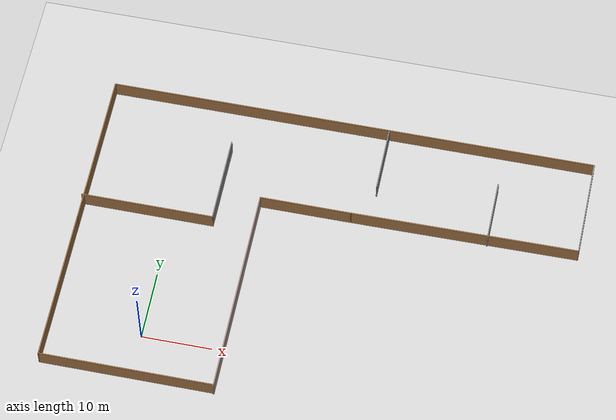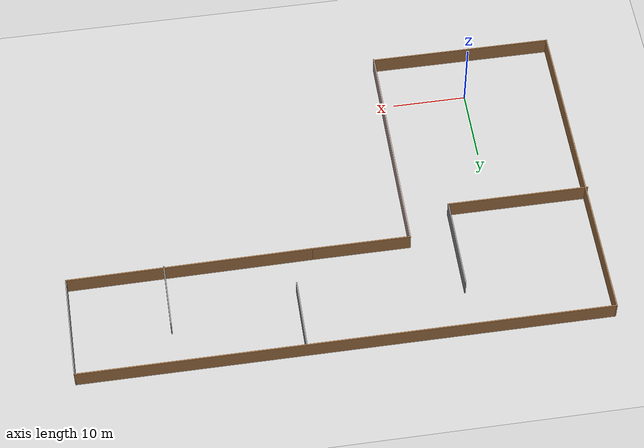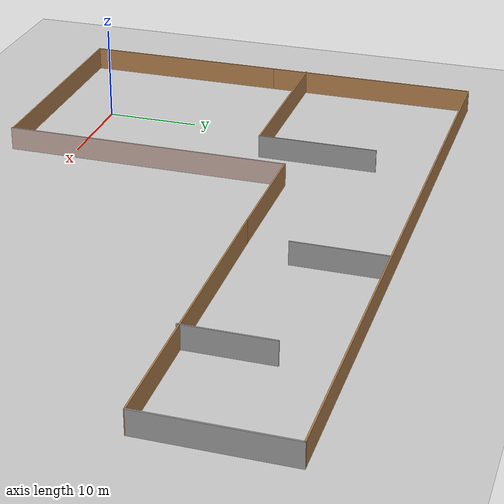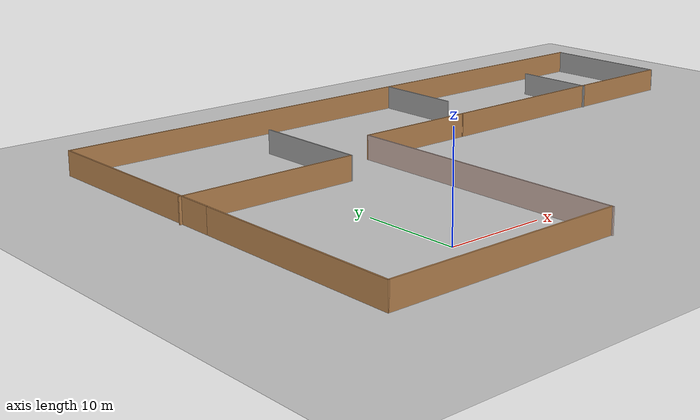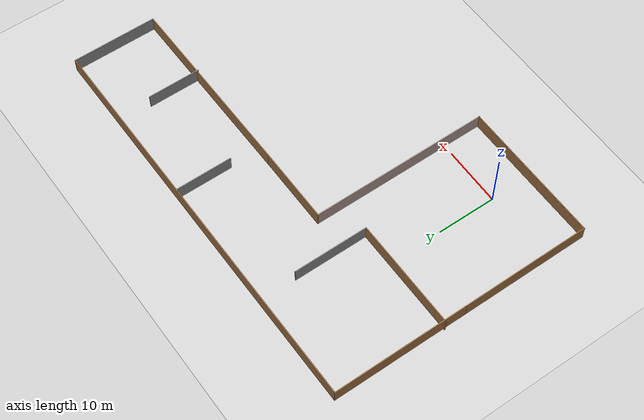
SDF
<sdf version="1.7">
 <world name="default">
  <light name="sun" type="directional">
   <pose>0 0 10 0 -0 0</pose>
   <diffuse>0.8 0.8 0.8 1</diffuse>
   <specular>0.2 0.2 0.2 1</specular>
   <attenuation>
    <range>1000</range>
    <constant>0.9</constant>
    <linear>0.01</linear>
    <quadratic>0.001</quadratic>
   </attenuation>
   <direction>-0.5 0.1 -0.9</direction>
   <spot><inner_angle>0</inner_angle><outer_angle>0</outer_angle><falloff>0</falloff></spot>
  </light>
  <model name="ground_plane">
   <static>1</static>
   <link name="link">
    <collision name="collision">
     <geometry><plane><normal>0 0 1</normal><size>100 100</size></plane></geometry>
     <surface><friction><ode><mu>100</mu><mu2>50</mu2></ode></friction></surface>
    </collision>
    <visual name="visual">
     <cast_shadows>0</cast_shadows>
     <geometry><plane><normal>0 0 1</normal><size>100 100</size></plane></geometry>
     <material>
      <script><uri>file://media/materials/scripts/gazebo.material</uri><name>Gazebo/Grey</name></script>
     </material>
    </visual>
   </link>
  </model>
  <gravity>0 0 -9.8</gravity>
  <magnetic_field>6e-06 2.3e-05 -4.2e-05</magnetic_field>
  <atmosphere type="adiabatic"/>
  <physics type="ode">
   <max_step_size>0.001</max_step_size>
   <real_time_factor>1</real_time_factor>
   <real_time_update_rate>1000</real_time_update_rate>
  </physics>
  <scene><ambient>0.4 0.4 0.4 1</ambient><background>0.7 0.7 0.7 1</background><shadows>1</shadows></scene>
  <spherical_coordinates>
   <surface_model>EARTH_WGS84</surface_model>
   <latitude_deg>0</latitude_deg>
   <longitude_deg>0</longitude_deg>
   <elevation>0</elevation>
   <heading_deg>0</heading_deg>
  </spherical_coordinates>
  <model name="test_world">
   <pose>22.0522 15.8456 0 0 -0 0</pose>
   <link name="Wall_1">
    <collision name="Wall_1_Collision">
     <geometry><box><size>22.25 0.15 2.5</size></box></geometry>
     <pose>0 0 1.25 0 -0 0</pose>
    </collision>
    <visual name="Wall_1_Visual">
     <pose>0 0 1.25 0 -0 0</pose>
     <geometry><box><size>22.25 0.15 2.5</size></box></geometry>
     <material>
      <script><uri>file://media/materials/scripts/gazebo.material</uri><name>Gazebo/Wood</name></script>
      <ambient>0.760784 0.662745 0.627451 1</ambient>
     </material>
     <meta><layer>0</layer></meta>
    </visual>
    <pose>-34.798 -11.3635 0 0 -0 -1.5708</pose>
   </link>
   <link name="Wall_14">
    <collision name="Wall_14_Collision">
     <geometry><box><size>23 0.15 2.5</size></box></geometry>
     <pose>0 0 1.25 0 -0 0</pose>
    </collision>
    <visual name="Wall_14_Visual">
     <pose>0 0 1.25 0 -0 0</pose>
     <geometry><box><size>23 0.15 2.5</size></box></geometry>
     <material>
      <script><uri>file://media/materials/scripts/gazebo.material</uri><name>Gazebo/Wood</name></script>
      <ambient>1 1 1 1</ambient>
     </material>
     <meta><layer>0</layer></meta>
    </visual>
    <pose>-34.798 11.1115 0 0 -0 1.5708</pose>
   </link>
   <link name="Wall_15">
    <collision name="Wall_15_Collision">
     <geometry><box><size>70 0.15 2.5</size></box></geometry>
     <pose>0 0 1.25 0 -0 0</pose>
    </collision>
    <visual name="Wall_15_Visual">
     <pose>0 0 1.25 0 -0 0</pose>
     <geometry><box><size>70 0.15 2.5</size></box></geometry>
     <material>
      <script><uri>file://media/materials/scripts/gazebo.material</uri><name>Gazebo/Wood</name></script>
      <ambient>1 1 1 1</ambient>
     </material>
     <meta><layer>0</layer></meta>
    </visual>
    <pose>0.126987 22.5365 0 0 -0 0</pose>
   </link>
   <link name="Wall_16">
    <collision name="Wall_16_Collision">
     <geometry><box><size>14.5 0.15 2.5</size></box></geometry>
     <pose>0 0 1.25 0 -0 0</pose>
    </collision>
    <visual name="Wall_16_Visual">
     <pose>0 0 1.25 0 -0 0</pose>
     <geometry><box><size>14.5 0.15 2.5</size></box></geometry>
     <material>
      <script><uri>file://media/materials/scripts/gazebo.material</uri><name>Gazebo/Grey</name></script>
      <ambient>1 1 1 1</ambient>
     </material>
     <meta><layer>0</layer></meta>
    </visual>
    <pose>35.052 15.3615 0 0 -0 -1.5708</pose>
   </link>
   <link name="Wall_17">
    <collision name="Wall_17_Collision">
     <geometry><box><size>32.501 0.15 2.5</size></box></geometry>
     <pose>0 0 1.25 0 -0 0</pose>
    </collision>
    <visual name="Wall_17_Visual">
     <pose>0 0 1.25 0 -0 0</pose>
     <geometry><box><size>32.501 0.15 2.5</size></box></geometry>
     <material>
      <script><uri>file://media/materials/scripts/gazebo.material</uri><name>Gazebo/Wood</name></script>
      <ambient>1 1 1 1</ambient>
     </material>
     <meta><layer>0</layer></meta>
    </visual>
    <pose>18.877 8.06153 0 0 -0 -3.13387</pose>
   </link>
   <link name="Wall_2">
    <collision name="Wall_2_Collision">
     <geometry><box><size>24.6466 0.15 2.5</size></box></geometry>
     <pose>0 0 1.25 0 -0 0</pose>
    </collision>
    <visual name="Wall_2_Visual">
     <pose>0 0 1.25 0 -0 0</pose>
     <geometry><box><size>24.6466 0.15 2.5</size></box></geometry>
     <material>
      <script><uri>file://media/materials/scripts/gazebo.material</uri><name>Gazebo/Wood</name></script>
      <ambient>1 1 1 1</ambient>
     </material>
     <meta><layer>0</layer></meta>
    </visual>
    <pose>-22.5497 -22.4135 0 0 -0 0</pose>
   </link>
   <link name="Wall_20">
    <collision name="Wall_20_Collision">
     <geometry><box><size>19 0.15 2.5</size></box></geometry>
     <pose>0 0 1.25 0 -0 0</pose>
    </collision>
    <visual name="Wall_20_Visual">
     <pose>0 0 1.25 0 -0 0</pose>
     <geometry><box><size>19 0.15 2.5</size></box></geometry>
     <material>
      <script><uri>file://media/materials/scripts/gazebo.material</uri><name>Gazebo/Wood</name></script>
      <ambient>1 1 1 1</ambient>
     </material>
     <meta><layer>0</layer></meta>
    </visual>
    <pose>-25.6276 3.4894 0 0 -0 0</pose>
   </link>
   <link name="Wall_21">
    <collision name="Wall_21_Collision">
     <geometry><box><size>12.75 0.15 2.5</size></box></geometry>
     <pose>0 0 1.25 0 -0 0</pose>
    </collision>
    <visual name="Wall_21_Visual">
     <pose>0 0 1.25 0 -0 0</pose>
     <geometry><box><size>12.75 0.15 2.5</size></box></geometry>
     <material>
      <script><uri>file://media/materials/scripts/gazebo.material</uri><name>Gazebo/Grey</name></script>
      <ambient>1 1 1 1</ambient>
     </material>
     <meta><layer>0</layer></meta>
    </visual>
    <pose>-16.2026 9.7894 0 0 -0 1.5708</pose>
   </link>
   <link name="Wall_23">
    <collision name="Wall_23_Collision">
     <geometry><box><size>9.75 0.15 2.5</size></box></geometry>
     <pose>0 0 1.25 0 -0 0</pose>
    </collision>
    <visual name="Wall_23_Visual">
     <pose>0 0 1.25 0 -0 0</pose>
     <geometry><box><size>9.75 0.15 2.5</size></box></geometry>
     <material>
      <script><uri>file://media/materials/scripts/gazebo.material</uri><name>Gazebo/Grey</name></script>
      <ambient>1 1 1 1</ambient>
     </material>
     <meta><layer>0</layer></meta>
    </visual>
    <pose>5.47 17.7301 0 0 -0 -1.5708</pose>
   </link>
   <link name="Wall_25">
    <collision name="Wall_25_Collision">
     <geometry><box><size>9 0.15 2.5</size></box></geometry>
     <pose>0 0 1.25 0 -0 0</pose>
    </collision>
    <visual name="Wall_25_Visual">
     <pose>0 0 1.25 0 -0 0</pose>
     <geometry><box><size>9 0.15 2.5</size></box></geometry>
     <material>
      <script><uri>file://media/materials/scripts/gazebo.material</uri><name>Gazebo/Grey</name></script>
      <ambient>1 1 1 1</ambient>
     </material>
     <meta><layer>0</layer></meta>
    </visual>
    <pose>22.2323 12.3084 0 0 -0 1.5708</pose>
   </link>
   <link name="Wall_3">
    <collision name="Wall_3_Collision">
     <geometry><box><size>30.5 0.15 2.5</size></box></geometry>
     <pose>0 0 1.25 0 -0 0</pose>
    </collision>
    <visual name="Wall_3_Visual">
     <pose>0 0 1.25 0 -0 0</pose>
     <geometry><box><size>30.5 0.15 2.5</size></box></geometry>
     <material>
      <script><uri>file://media/materials/scripts/gazebo.material</uri><name>Gazebo/Grey</name></script>
      <ambient>0.760784 0.662745 0.627451 1</ambient>
     </material>
     <meta><layer>0</layer></meta>
    </visual>
    <pose>-10.3014 -7.36153 0 0 -0 1.5708</pose>
   </link>
   <link name="Wall_4">
    <collision name="Wall_4_Collision">
     <geometry><box><size>13.1534 0.15 2.5</size></box></geometry>
     <pose>0 0 1.25 0 -0 0</pose>
    </collision>
    <visual name="Wall_4_Visual">
     <pose>0 0 1.25 0 -0 0</pose>
     <geometry><box><size>13.1534 0.15 2.5</size></box></geometry>
     <material>
      <script><uri>file://media/materials/scripts/gazebo.material</uri><name>Gazebo/Wood</name></script>
      <ambient>1 1 1 1</ambient>
     </material>
     <meta><layer>0</layer></meta>
    </visual>
    <pose>-3.7997 7.93653 0 0 -0 0</pose>
   </link>
   <static>1</static>
  </model>
 </world>
</sdf>
